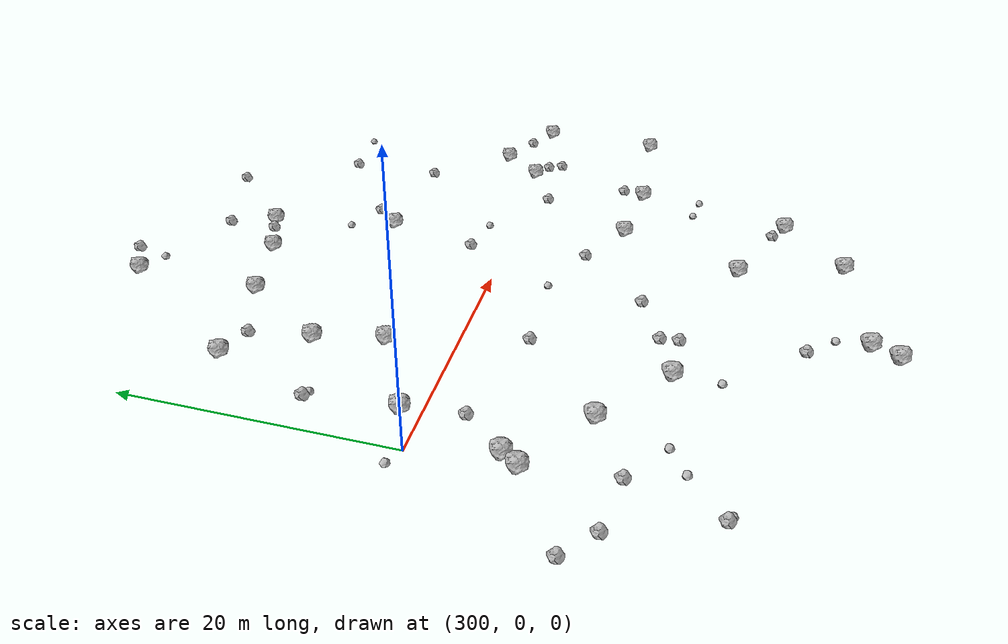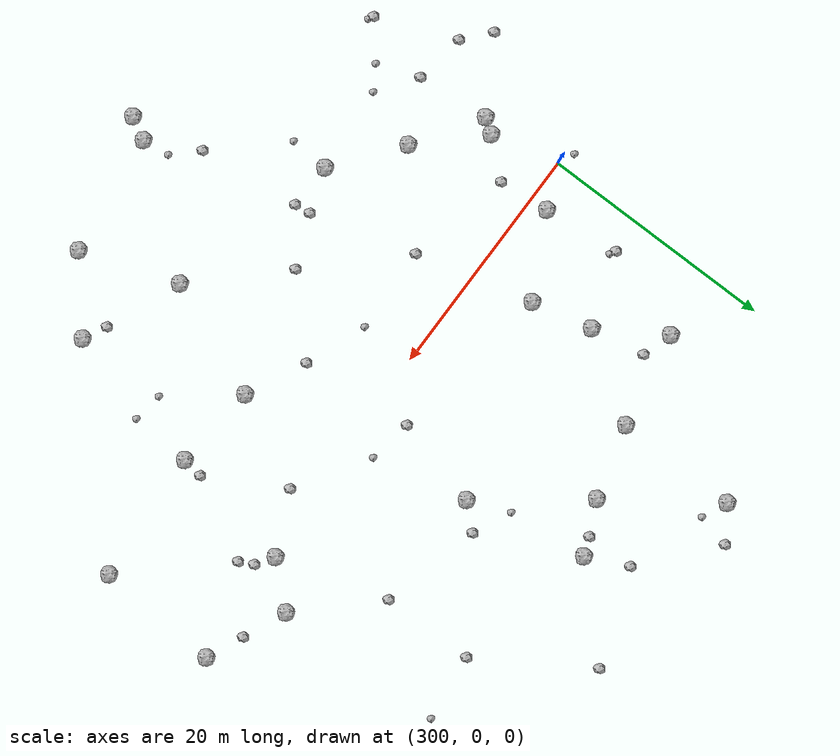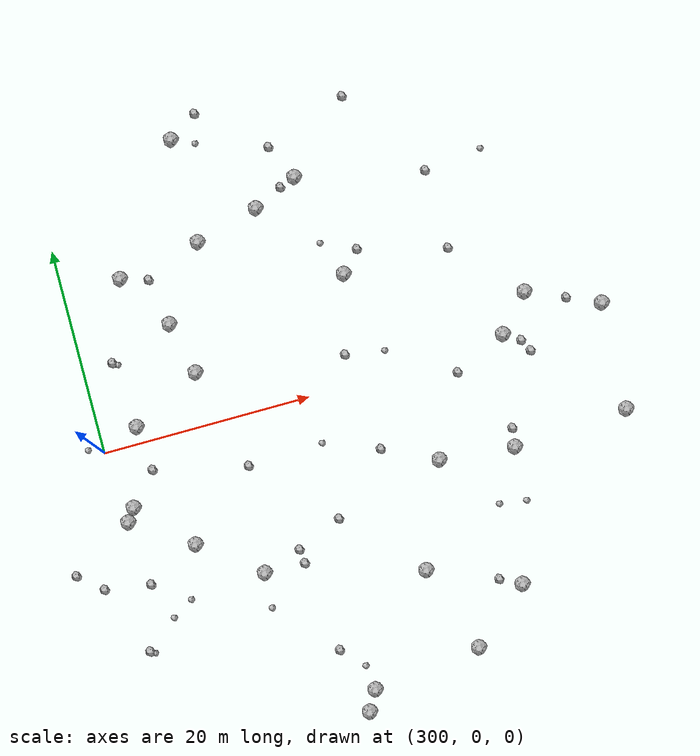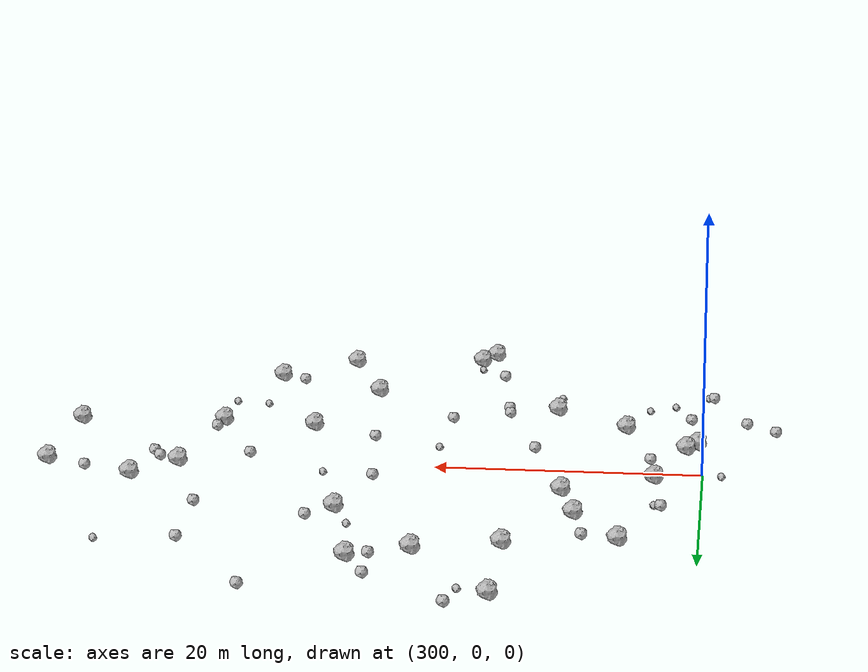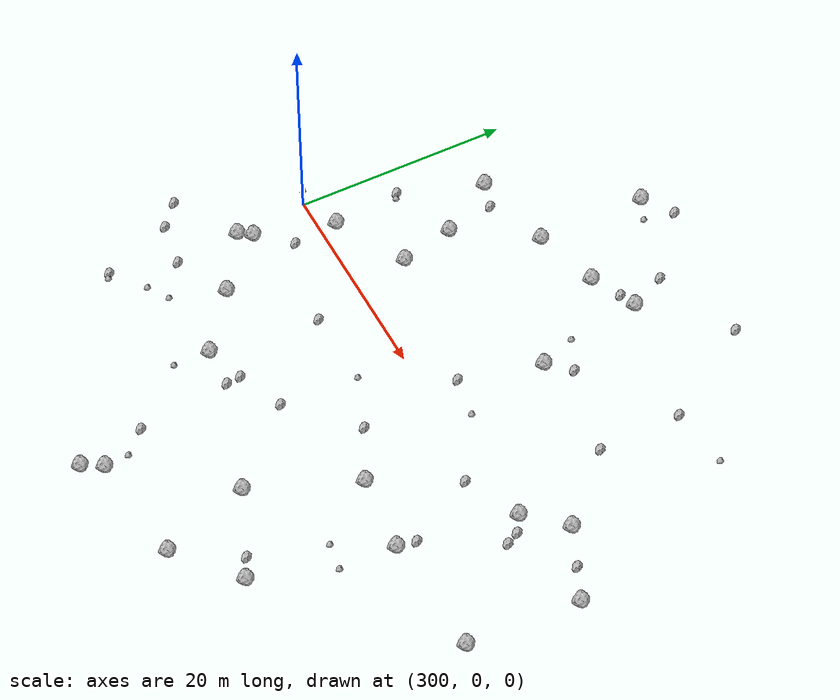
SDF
<sdf version="1.6">
 <world name="default">
  <include><uri>model://sun</uri></include>
  <model name="rock1_8_3">
   <include><uri>model://rock1</uri><pose>326.2821106081884 -18.641448661631806 0.5 0 0 0</pose></include>
  </model>
  <model name="rock1_8_4">
   <include><uri>model://rock1</uri><pose>342.4304292345209 4.289537977032779 0.5 0 0 0</pose></include>
  </model>
  <model name="rock1_8_5">
   <include><uri>model://rock1</uri><pose>319.9112816318177 18.88419567574625 0.5 0 0 0</pose></include>
  </model>
  <model name="rock1_8_6">
   <include><uri>model://rock1</uri><pose>330.28416833418953 -9.007736196718362 0.5 0 0 0</pose></include>
  </model>
  <model name="rock1_8_7">
   <include><uri>model://rock1</uri><pose>337.4695201526148 -9.710439882998077 0.5 0 0 0</pose></include>
  </model>
  <model name="rock1_8_8">
   <include><uri>model://rock1</uri><pose>301.4134468319322 -5.7483232612802375 0.5 0 0 0</pose></include>
  </model>
  <model name="rock1_8_9">
   <include><uri>model://rock1</uri><pose>334.5949285279163 -22.259814429758787 0.5 0 0 0</pose></include>
  </model>
  <model name="rock1_8_10">
   <include><uri>model://rock1</uri><pose>310.2824985155379 5.091062119705967 0.5 0 0 0</pose></include>
  </model>
  <model name="rock1_8_11">
   <include><uri>model://rock1</uri><pose>326.32869676546545 10.505986627379578 0.5 0 0 0</pose></include>
  </model>
  <model name="rock1_8_12">
   <include><uri>model://rock1</uri><pose>317.7117369844122 -29.831396931086438 0.5 0 0 0</pose></include>
  </model>
  <model name="rock1_8_13">
   <include><uri>model://rock1</uri><pose>306.13275079964325 -10.619100164009211 0.5 0 0 0</pose></include>
  </model>
  <model name="rock1_8_14">
   <include><uri>model://rock1</uri><pose>329.06247591928235 -26.827940892409416 0.5 0 0 0</pose></include>
  </model>
  <model name="rock1_8_15">
   <include><uri>model://rock1</uri><pose>303.6024382832504 1.5462386267249038 0.5 0 0 0</pose></include>
  </model>
  <model name="rock1_8_16">
   <include><uri>model://rock1</uri><pose>348.5894171731279 -9.037957633119213 0.5 0 0 0</pose></include>
  </model>
  <model name="rock1_8_17">
   <include><uri>model://rock1</uri><pose>349.2300844635071 1.3185720762144015 0.5 0 0 0</pose></include>
  </model>
  <model name="rock1_8_18">
   <include><uri>model://rock1</uri><pose>339.34126270793314 0.8962210244342614 0.5 0 0 0</pose></include>
  </model>
  <model name="rock1_8_19">
   <include><uri>model://rock1</uri><pose>313.7058994698116 17.167300740644862 0.5 0 0 0</pose></include>
  </model>
  <model name="rock1_8_20">
   <include><uri>model://rock1</uri><pose>324.2600840628582 20.852660812057643 0.5 0 0 0</pose></include>
  </model>
  <model name="rock1_8_21">
   <include><uri>model://rock1</uri><pose>318.7543313284026 -28.000450501706634 0.5 0 0 0</pose></include>
  </model>
  <model name="rock1_8_22">
   <include><uri>model://rock1</uri><pose>311.68346956984317 -14.890504462721728 0.5 0 0 0</pose></include>
  </model>
  <model name="rock1_8_23">
   <include><uri>model://rock1</uri><pose>313.8086303495411 27.525270595501915 0.5 0 0 0</pose></include>
  </model>
  <model name="rock1_8_24">
   <include><uri>model://rock1</uri><pose>309.09010895791596 10.230416283689308 0.5 0 0 0</pose></include>
  </model>
  <model name="rock1_8_25">
   <include><uri>model://rock1</uri><pose>300.57397189250815 -6.949229484634628 0.5 0 0 0</pose></include>
  </model>
  <model name="rock1_8_26">
   <include><uri>model://rock1</uri><pose>305.6754623790013 15.67997712293932 0.5 0 0 0</pose></include>
  </model>
  <model name="rock2_8_0">
   <include><uri>model://rock2</uri><pose>336.5155058999252 18.205888094060434 0.3 0 0 0</pose></include>
  </model>
  <model name="rock2_8_1">
   <include><uri>model://rock2</uri><pose>319.6759388106653 -11.83685255366396 0.3 0 0 0</pose></include>
  </model>
  <model name="rock2_8_2">
   <include><uri>model://rock2</uri><pose>296.8195391785676 -12.436975663383361 0.3 0 0 0</pose></include>
  </model>
  <model name="rock2_8_3">
   <include><uri>model://rock2</uri><pose>312.8093849041369 -4.788732985235939 0.3 0 0 0</pose></include>
  </model>
  <model name="rock2_8_4">
   <include><uri>model://rock2</uri><pose>324.3576873540419 3.010432270675892 0.3 0 0 0</pose></include>
  </model>
  <model name="rock2_8_5">
   <include><uri>model://rock2</uri><pose>337.727260181736 -7.9296445441118095 0.3 0 0 0</pose></include>
  </model>
  <model name="rock2_8_6">
   <include><uri>model://rock2</uri><pose>316.5134167501879 -23.647625997036993 0.3 0 0 0</pose></include>
  </model>
  <model name="rock2_8_7">
   <include><uri>model://rock2</uri><pose>316.58650509137635 29.467893825402655 0.3 0 0 0</pose></include>
  </model>
  <model name="rock2_8_8">
   <include><uri>model://rock2</uri><pose>315.50008668495065 -15.007637777159124 0.3 0 0 0</pose></include>
  </model>
  <model name="rock2_8_9">
   <include><uri>model://rock2</uri><pose>322.6852016699676 20.286082925251442 0.3 0 0 0</pose></include>
  </model>
  <model name="rock2_8_10">
   <include><uri>model://rock2</uri><pose>341.44693113101295 -1.2760265401997906 0.3 0 0 0</pose></include>
  </model>
  <model name="rock2_8_11">
   <include><uri>model://rock2</uri><pose>294.5989191629381 -10.525163339714627 0.3 0 0 0</pose></include>
  </model>
  <model name="rock2_8_12">
   <include><uri>model://rock2</uri><pose>330.7589450588576 27.37514143807479 0.3 0 0 0</pose></include>
  </model>
  <model name="rock2_8_13">
   <include><uri>model://rock2</uri><pose>334.18766663155253 -1.4619081027127905 0.3 0 0 0</pose></include>
  </model>
  <model name="rock2_8_14">
   <include><uri>model://rock2</uri><pose>303.9776321145312 -2.7557297159322225 0.3 0 0 0</pose></include>
  </model>
  <model name="rock2_8_15">
   <include><uri>model://rock2</uri><pose>301.1288493348774 -13.109402452108267 0.3 0 0 0</pose></include>
  </model>
  <model name="rock2_8_16">
   <include><uri>model://rock2</uri><pose>299.47757506937006 -19.10365134901908 0.3 0 0 0</pose></include>
  </model>
  <model name="rock2_8_17">
   <include><uri>model://rock2</uri><pose>332.6244814064697 -21.249077236602925 0.3 0 0 0</pose></include>
  </model>
  <model name="rock2_8_18">
   <include><uri>model://rock2</uri><pose>302.87970371422136 8.073080996535118 0.3 0 0 0</pose></include>
  </model>
  <model name="rock2_8_19">
   <include><uri>model://rock2</uri><pose>315.34513646072054 -13.644970361445132 0.3 0 0 0</pose></include>
  </model>
  <model name="rock2_8_20">
   <include><uri>model://rock2</uri><pose>308.22817273756704 14.90090308002825 0.3 0 0 0</pose></include>
  </model>
  <model name="rock2_8_21">
   <include><uri>model://rock2</uri><pose>328.1512225742297 12.526758259340973 0.3 0 0 0</pose></include>
  </model>
  <model name="rock2_8_22">
   <include><uri>model://rock2</uri><pose>340.8433860103103 -0.08933649333995675 0.3 0 0 0</pose></include>
  </model>
  <model name="rock2_8_23">
   <include><uri>model://rock2</uri><pose>346.10038762206125 2.732074990101715 0.3 0 0 0</pose></include>
  </model>
  <model name="rock2_8_24">
   <include><uri>model://rock2</uri><pose>325.22085411499376 -6.541692175314537 0.3 0 0 0</pose></include>
  </model>
  <model name="rock2_8_25">
   <include><uri>model://rock2</uri><pose>336.5711698085529 10.344319733702498 0.3 0 0 0</pose></include>
  </model>
  <model name="rock2_8_26">
   <include><uri>model://rock2</uri><pose>322.6202301909881 24.401793287207298 0.3 0 0 0</pose></include>
  </model>
  <model name="rock3_8_0">
   <include><uri>model://rock3</uri><pose>337.14586172059796 -14.884483668763693 0.2 0 0 0</pose></include>
  </model>
  <model name="rock3_8_1">
   <include><uri>model://rock3</uri><pose>334.58757782925784 -14.515657002974638 0.2 0 0 0</pose></include>
  </model>
  <model name="rock3_8_2">
   <include><uri>model://rock3</uri><pose>311.44977245255967 -18.24009732133095 0.2 0 0 0</pose></include>
  </model>
  <model name="rock3_8_3">
   <include><uri>model://rock3</uri><pose>315.91090214555084 26.60169786149733 0.2 0 0 0</pose></include>
  </model>
  <model name="rock3_8_4">
   <include><uri>model://rock3</uri><pose>304.3798364081466 -15.484735704075174 0.2 0 0 0</pose></include>
  </model>
  <model name="rock3_8_5">
   <include><uri>model://rock3</uri><pose>328.1013876048959 2.3773775729955773 0.2 0 0 0</pose></include>
  </model>
  <model name="rock3_8_6">
   <include><uri>model://rock3</uri><pose>324.9208064068233 14.009678485953543 0.2 0 0 0</pose></include>
  </model>
  <model name="rock3_8_7">
   <include><uri>model://rock3</uri><pose>302.41015876544606 -16.70407261363898 0.2 0 0 0</pose></include>
  </model>
  <model name="rock3_8_8">
   <include><uri>model://rock3</uri><pose>320.0389641260835 -4.566242303799839 0.2 0 0 0</pose></include>
  </model>
  <model name="rock3_8_9">
   <include><uri>model://rock3</uri><pose>298.586682758629 0.5987122493087043 0.2 0 0 0</pose></include>
  </model>
  <model name="rock3_8_10">
   <include><uri>model://rock3</uri><pose>342.22212228792284 18.8751364797467 0.2 0 0 0</pose></include>
  </model>
  <model name="rock3_8_11">
   <include><uri>model://rock3</uri><pose>303.3396381739609 7.757513874815928 0.2 0 0 0</pose></include>
  </model>
  <model name="rock3_8_12">
   <include><uri>model://rock3</uri><pose>299.87660236487665 -19.38336002500252 0.2 0 0 0</pose></include>
  </model>
  <model name="rock3_8_13">
   <include><uri>model://rock3</uri><pose>318.4552411858124 -25.71052060509455 0.2 0 0 0</pose></include>
  </model>
 </world>
</sdf>
